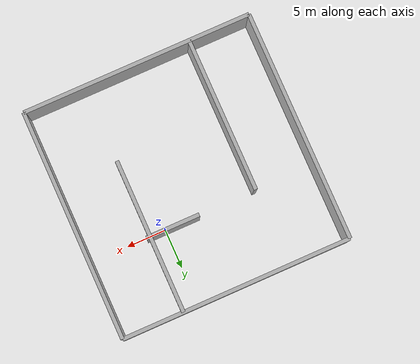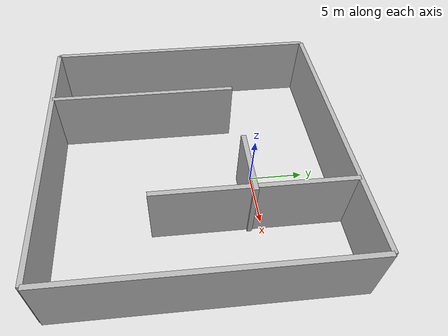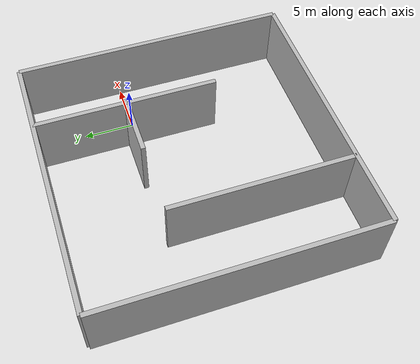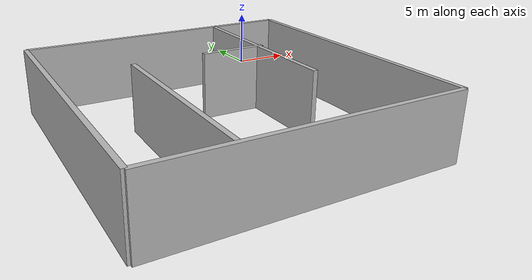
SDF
<sdf version="1.5">
 <world name="example_underwater">
  <physics name="default_physics" default="true" type="ode">
   <max_step_size>0.002</max_step_size>
   <real_time_factor>1</real_time_factor>
   <real_time_update_rate>500</real_time_update_rate>
   <ode><solver><type>quick</type><iters>50</iters><sor>0.5</sor></solver></ode>
  </physics>
  <scene>
   <ambient>0.01 0.01 0.01 1.0</ambient>
   <sky><clouds><speed>12</speed></clouds></sky>
   <shadows>1</shadows>
  </scene>
  <include><uri>model://sun</uri></include>
  <model name="laberinto">
   <static>true</static>
   <link name="pared_exterior_norte">
    <pose>-5 10 -2 0 0 0</pose>
    <collision name="collision"><geometry><box><size>30 0.5 7</size></box></geometry></collision>
    <visual name="visual">
     <geometry><box><size>30 0.5 7</size></box><material><ambient>0.4 0.2 0 1</ambient></material></geometry>
    </visual>
   </link>
   <link name="pared_exterior_sur">
    <pose>-5 -20 -2 0 0 0</pose>
    <collision name="collision"><geometry><box><size>30 0.5 7</size></box></geometry></collision>
    <visual name="visual">
     <geometry><box><size>30 0.5 7</size></box><material><ambient>0.4 0.2 0 1</ambient></material></geometry>
    </visual>
   </link>
   <link name="pared_exterior_este">
    <pose>10 -5 -2 0 0 0</pose>
    <collision name="collision"><geometry><box><size>0.5 30 7</size></box></geometry></collision>
    <visual name="visual">
     <geometry><box><size>0.5 30 7</size></box><material><ambient>0.4 0.2 0 1</ambient></material></geometry>
    </visual>
   </link>
   <link name="pared_exterior_oeste">
    <pose>-20 -5 -2 0 0 0</pose>
    <collision name="collision"><geometry><box><size>0.5 30 7</size></box></geometry></collision>
    <visual name="visual">
     <geometry><box><size>0.5 30 7</size></box><material><ambient>0.4 0.2 0 1</ambient></material></geometry>
    </visual>
   </link>
   <link name="pared3">
    <pose>2 0 -2 0 0 0</pose>
    <collision name="collision"><geometry><box><size>0.5 20 7</size></box></geometry></collision>
    <visual name="visual">
     <geometry><box><size>0.5 20 7</size></box><material><ambient>0.4 0.2 0 1</ambient></material></geometry>
    </visual>
   </link>
   <link name="pared4">
    <pose>-12 -10 -2 0 0 0</pose>
    <collision name="collision"><geometry><box><size>0.5 20 7</size></box></geometry></collision>
    <visual name="visual">
     <geometry><box><size>0.5 20 7</size></box><material><ambient>0.4 0.2 0 1</ambient></material></geometry>
    </visual>
   </link>
   <link name="pared5">
    <pose>-1 0 -2 0 0 0</pose>
    <collision name="collision"><geometry><box><size>7 0.5 7</size></box></geometry></collision>
    <visual name="visual">
     <geometry><box><size>7 0.5 7</size></box><material><ambient>0.4 0.2 0 1</ambient></material></geometry>
    </visual>
   </link>
  </model>
 </world>
</sdf>
